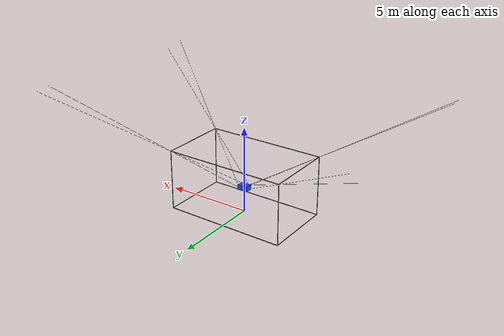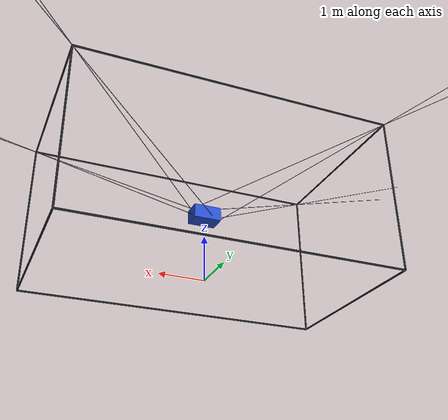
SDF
<?xml version="1.0"?>
<sdf version="1.4">
  <model name="/home/themarkofaspur/catkin_ws/src/cdpr3/sdf/cube">
    <!--Definition of the robot frame-->
    <link name="frame">
      <pose>0 0 0 0 0 0</pose>
      <inertial>
        <inertia>
          <ixx>11770.8333333</ixx>
          <ixy>0</ixy>
          <ixz>0</ixz>
          <iyy>25520.8333333</iyy>
          <iyz>0</iyz>
          <izz>27083.3333333</izz>
        </inertia>
        <mass>100000</mass>
      </inertial>
      <visual name="visual1">
        <geometry>
          <cylinder>
            <radius>0.02</radius>
            <length>3.5</length>
          </cylinder>
        </geometry>
        <pose>-3.500000 -2.000000 1.750000 0.000000 0.000000 0.000000</pose>
        <material>
          <script>
            <uri>file://media/materials/scripts/kitchen.material</uri>
            <name>Gazebo/Black</name>
          </script>
        </material>
      </visual>
      <collision name="collision1">
        <geometry>
          <cylinder>
            <radius>0.02</radius>
          </cylinder>
        </geometry>
        <pose>-3.500000 -2.000000 1.750000 0.000000 0.000000 0.000000</pose>
      </collision>
      <visual name="visual2">
        <geometry>
          <cylinder>
            <radius>0.02</radius>
            <length>4.0</length>
          </cylinder>
        </geometry>
        <pose>-3.500000 0.000000 0.000000 1.570796 0.000000 0.000000</pose>
        <material>
          <script>
            <uri>file://media/materials/scripts/kitchen.material</uri>
            <name>Gazebo/Black</name>
          </script>
        </material>
      </visual>
      <collision name="collision2">
        <geometry>
          <cylinder>
            <radius>0.02</radius>
          </cylinder>
        </geometry>
        <pose>-3.500000 0.000000 0.000000 1.570796 0.000000 0.000000</pose>
      </collision>
      <visual name="visual3">
        <geometry>
          <cylinder>
            <radius>0.02</radius>
            <length>7.0</length>
          </cylinder>
        </geometry>
        <pose>0.000000 -2.000000 0.000000 0.000000 1.570796 0.000000</pose>
        <material>
          <script>
            <uri>file://media/materials/scripts/kitchen.material</uri>
            <name>Gazebo/Black</name>
          </script>
        </material>
      </visual>
      <collision name="collision3">
        <geometry>
          <cylinder>
            <radius>0.02</radius>
          </cylinder>
        </geometry>
        <pose>0.000000 -2.000000 0.000000 0.000000 1.570796 0.000000</pose>
      </collision>
      <visual name="visual4">
        <geometry>
          <cylinder>
            <radius>0.02</radius>
            <length>4.0</length>
          </cylinder>
        </geometry>
        <pose>-3.500000 0.000000 3.500000 1.570796 0.000000 0.000000</pose>
        <material>
          <script>
            <uri>file://media/materials/scripts/kitchen.material</uri>
            <name>Gazebo/Black</name>
          </script>
        </material>
      </visual>
      <collision name="collision4">
        <geometry>
          <cylinder>
            <radius>0.02</radius>
          </cylinder>
        </geometry>
        <pose>-3.500000 0.000000 3.500000 1.570796 0.000000 0.000000</pose>
      </collision>
      <visual name="visual5">
        <geometry>
          <cylinder>
            <radius>0.02</radius>
            <length>7.0</length>
          </cylinder>
        </geometry>
        <pose>0.000000 -2.000000 3.500000 0.000000 1.570796 0.000000</pose>
        <material>
          <script>
            <uri>file://media/materials/scripts/kitchen.material</uri>
            <name>Gazebo/Black</name>
          </script>
        </material>
      </visual>
      <collision name="collision5">
        <geometry>
          <cylinder>
            <radius>0.02</radius>
          </cylinder>
        </geometry>
        <pose>0.000000 -2.000000 3.500000 0.000000 1.570796 0.000000</pose>
      </collision>
      <visual name="visual6">
        <geometry>
          <cylinder>
            <radius>0.02</radius>
            <length>3.5</length>
          </cylinder>
        </geometry>
        <pose>-3.500000 2.000000 1.750000 0.000000 0.000000 0.000000</pose>
        <material>
          <script>
            <uri>file://media/materials/scripts/kitchen.material</uri>
            <name>Gazebo/Black</name>
          </script>
        </material>
      </visual>
      <collision name="collision6">
        <geometry>
          <cylinder>
            <radius>0.02</radius>
          </cylinder>
        </geometry>
        <pose>-3.500000 2.000000 1.750000 0.000000 0.000000 0.000000</pose>
      </collision>
      <visual name="visual7">
        <geometry>
          <cylinder>
            <radius>0.02</radius>
            <length>7.0</length>
          </cylinder>
        </geometry>
        <pose>0.000000 2.000000 0.000000 0.000000 1.570796 0.000000</pose>
        <material>
          <script>
            <uri>file://media/materials/scripts/kitchen.material</uri>
            <name>Gazebo/Black</name>
          </script>
        </material>
      </visual>
      <collision name="collision7">
        <geometry>
          <cylinder>
            <radius>0.02</radius>
          </cylinder>
        </geometry>
        <pose>0.000000 2.000000 0.000000 0.000000 1.570796 0.000000</pose>
      </collision>
      <visual name="visual8">
        <geometry>
          <cylinder>
            <radius>0.02</radius>
            <length>7.0</length>
          </cylinder>
        </geometry>
        <pose>0.000000 2.000000 3.500000 0.000000 1.570796 0.000000</pose>
        <material>
          <script>
            <uri>file://media/materials/scripts/kitchen.material</uri>
            <name>Gazebo/Black</name>
          </script>
        </material>
      </visual>
      <collision name="collision8">
        <geometry>
          <cylinder>
            <radius>0.02</radius>
          </cylinder>
        </geometry>
        <pose>0.000000 2.000000 3.500000 0.000000 1.570796 0.000000</pose>
      </collision>
      <visual name="visual9">
        <geometry>
          <cylinder>
            <radius>0.02</radius>
            <length>3.5</length>
          </cylinder>
        </geometry>
        <pose>3.500000 -2.000000 1.750000 0.000000 0.000000 0.000000</pose>
        <material>
          <script>
            <uri>file://media/materials/scripts/kitchen.material</uri>
            <name>Gazebo/Black</name>
          </script>
        </material>
      </visual>
      <collision name="collision9">
        <geometry>
          <cylinder>
            <radius>0.02</radius>
          </cylinder>
        </geometry>
        <pose>3.500000 -2.000000 1.750000 0.000000 0.000000 0.000000</pose>
      </collision>
      <visual name="visual10">
        <geometry>
          <cylinder>
            <radius>0.02</radius>
            <length>4.0</length>
          </cylinder>
        </geometry>
        <pose>3.500000 0.000000 0.000000 1.570796 0.000000 0.000000</pose>
        <material>
          <script>
            <uri>file://media/materials/scripts/kitchen.material</uri>
            <name>Gazebo/Black</name>
          </script>
        </material>
      </visual>
      <collision name="collision10">
        <geometry>
          <cylinder>
            <radius>0.02</radius>
          </cylinder>
        </geometry>
        <pose>3.500000 0.000000 0.000000 1.570796 0.000000 0.000000</pose>
      </collision>
      <visual name="visual11">
        <geometry>
          <cylinder>
            <radius>0.02</radius>
            <length>4.0</length>
          </cylinder>
        </geometry>
        <pose>3.500000 0.000000 3.500000 1.570796 0.000000 0.000000</pose>
        <material>
          <script>
            <uri>file://media/materials/scripts/kitchen.material</uri>
            <name>Gazebo/Black</name>
          </script>
        </material>
      </visual>
      <collision name="collision11">
        <geometry>
          <cylinder>
            <radius>0.02</radius>
          </cylinder>
        </geometry>
        <pose>3.500000 0.000000 3.500000 1.570796 0.000000 0.000000</pose>
      </collision>
      <visual name="visual12">
        <geometry>
          <cylinder>
            <radius>0.02</radius>
            <length>3.5</length>
          </cylinder>
        </geometry>
        <pose>3.500000 2.000000 1.750000 0.000000 0.000000 0.000000</pose>
        <material>
          <script>
            <uri>file://media/materials/scripts/kitchen.material</uri>
            <name>Gazebo/Black</name>
          </script>
        </material>
      </visual>
      <collision name="collision12">
        <geometry>
          <cylinder>
            <radius>0.02</radius>
          </cylinder>
        </geometry>
        <pose>3.500000 2.000000 1.750000 0.000000 0.000000 0.000000</pose>
      </collision>
    </link>
    <!--Definition of the robot cables-->
    <!--Definition of the robot platform-->
    <link name="platform">
      <pose>0.000000 0.000000 1.500000 0.000000 0.000000 0.000000</pose>
      <visual name="visualplatform">
        <geometry>
          <box>
            <size>0.6 0.4 0.3</size>
          </box>
        </geometry>
        <material>
          <script>
            <uri>file://media/materials/scripts/kitchen.material</uri>
            <name>Gazebo/Blue</name>
          </script>
        </material>
      </visual>
      <collision name="collisionplatform">
        <geometry>
          <box>
            <size>0.6 0.4 0.3</size>
          </box>
        </geometry>
      </collision>
      <inertial>
        <inertia>
          <ixx>0.635416666667</ixx>
          <ixy>0</ixy>
          <ixz>0</ixz>
          <iyy>0.927083333333</iyy>
          <iyz>0</iyz>
          <izz>1.04166666667</izz>
        </inertia>
        <mass>50.0</mass>
      </inertial>
    </link>
    <link name="cable0">
      <pose>-4.738562 2.619281 4.127650 2.362906 0.952128 1.797342</pose>
      <visual name="visual">
        <geometry>
          <cylinder>
            <radius>0.005</radius>
            <length>12.124355653</length>
          </cylinder>
        </geometry>
        <material>
          <script>
            <uri>file://media/materials/scripts/kitchen.material</uri>
            <name>Gazebo/Black</name>
          </script>
        </material>
      </visual>
      <inertial>
        <inertia>
          <ixx>0.005</ixx>
          <ixy>0</ixy>
          <ixz>0</ixz>
          <iyy>0.005</iyy>
          <iyz>0</iyz>
          <izz>0.005</izz>
        </inertia>
        <mass>0.001</mass>
      </inertial>
    </link>
    <link name="virt_X0">
      <inertial>
        <inertia>
          <ixx>0</ixx>
          <ixy>0</ixy>
          <ixz>0</ixz>
          <iyy>0</iyy>
          <iyz>0</iyz>
          <izz>0</izz>
        </inertia>
        <mass>0.001</mass>
      </inertial>
      <pose>-3.500000 2.000000 3.500000 2.362906 0.952128 1.797342</pose>
    </link>
    <joint name="rev_X0" type="revolute">
      <pose>0 0 0 2.362906 0.952128 1.797342</pose>
      <parent>frame</parent>
      <child>virt_X0</child>
      <axis>
        <xyz>-0.130264 0.565132 -0.814651</xyz>
        <limit>
          <effort>6500</effort>
          <velocity>100</velocity>
        </limit>
        <dynamics>
          <damping>0.01</damping>
        </dynamics>
      </axis>
    </joint>
    <link name="virt_Y0">
      <inertial>
        <inertia>
          <ixx>0</ixx>
          <ixy>0</ixy>
          <ixz>0</ixz>
          <iyy>0</iyy>
          <iyz>0</iyz>
          <izz>0</izz>
        </inertia>
        <mass>0.001</mass>
      </inertial>
      <pose>-3.500000 2.000000 3.500000 2.362906 0.952128 1.797342</pose>
    </link>
    <joint name="rev_Y0" type="revolute">
      <pose>0 0 0 2.362906 0.952128 1.797342</pose>
      <parent>virt_Y0</parent>
      <child>virt_X0</child>
      <axis>
        <xyz>0.565132 0.717434 0.407326</xyz>
        <limit>
          <effort>6500</effort>
          <velocity>100</velocity>
        </limit>
        <dynamics>
          <damping>0.01</damping>
        </dynamics>
      </axis>
    </joint>
    <joint name="linear0" type="prismatic">
      <pose>0 0 2.029293 2.362906 0.952128 1.797342</pose>
      <parent>virt_Y0</parent>
      <child>cable0</child>
      <axis>
        <xyz>-0.814651 0.407326 0.412830</xyz>
        <limit>
          <lower>-50</lower>
          <upper>50</upper>
          <effort>6500</effort>
          <velocity>100</velocity>
        </limit>
        <dynamics>
          <damping>1</damping>
        </dynamics>
      </axis>
    </joint>
    <link name="virt_Xpf0">
      <inertial>
        <inertia>
          <ixx>0</ixx>
          <ixy>0</ixy>
          <ixz>0</ixz>
          <iyy>0</iyy>
          <iyz>0</iyz>
          <izz>0</izz>
        </inertia>
        <mass>0.001</mass>
      </inertial>
      <pose>0.200000 0.150000 1.625000 2.362906 0.952128 1.797342</pose>
    </link>
    <joint name="rev_Xpf0" type="revolute">
      <pose>0 0 0 2.362906 0.952128 1.797342</pose>
      <parent>platform</parent>
      <child>virt_Xpf0</child>
      <axis>
        <xyz>1 0 0</xyz>
        <limit>
          <effort>6500</effort>
          <velocity>100</velocity>
        </limit>
        <dynamics>
          <damping>0.01</damping>
        </dynamics>
      </axis>
    </joint>
    <link name="virt_Ypf0">
      <inertial>
        <inertia>
          <ixx>0</ixx>
          <ixy>0</ixy>
          <ixz>0</ixz>
          <iyy>0</iyy>
          <iyz>0</iyz>
          <izz>0</izz>
        </inertia>
        <mass>0.001</mass>
      </inertial>
      <pose>0.200000 0.150000 1.625000 2.362906 0.952128 1.797342</pose>
    </link>
    <joint name="rev_Ypf0" type="revolute">
      <pose>0 0 0 2.362906 0.952128 1.797342</pose>
      <parent>virt_Xpf0</parent>
      <child>virt_Ypf0</child>
      <axis>
        <xyz>0 1 0</xyz>
        <limit>
          <effort>6500</effort>
          <velocity>100</velocity>
        </limit>
        <dynamics>
          <damping>0.01</damping>
        </dynamics>
      </axis>
    </joint>
    <joint name="rev_Zpf0" type="revolute">
      <pose>0 0 0 2.362906 0.952128 1.797342</pose>
      <child>virt_Ypf0</child>
      <parent>cable0</parent>
      <axis>
        <xyz>0 0 1</xyz>
        <limit>
          <effort>6500</effort>
          <velocity>100</velocity>
        </limit>
        <dynamics>
          <damping>0.01</damping>
        </dynamics>
      </axis>
    </joint>
    <link name="cable1">
      <pose>4.622994 2.561497 4.145093 2.425290 -0.919977 -1.847587</pose>
      <visual name="visual">
        <geometry>
          <cylinder>
            <radius>0.005</radius>
            <length>12.124355653</length>
          </cylinder>
        </geometry>
        <material>
          <script>
            <uri>file://media/materials/scripts/kitchen.material</uri>
            <name>Gazebo/Black</name>
          </script>
        </material>
      </visual>
      <inertial>
        <inertia>
          <ixx>0.005</ixx>
          <ixy>0</ixy>
          <ixz>0</ixz>
          <iyy>0.005</iyy>
          <iyz>0</iyz>
          <izz>0.005</izz>
        </inertia>
        <mass>0.001</mass>
      </inertial>
    </link>
    <link name="virt_X1">
      <inertial>
        <inertia>
          <ixx>0</ixx>
          <ixy>0</ixy>
          <ixz>0</ixz>
          <iyy>0</iyy>
          <iyz>0</iyz>
          <izz>0</izz>
        </inertia>
        <mass>0.001</mass>
      </inertial>
      <pose>3.500000 2.000000 3.500100 2.425290 -0.919977 -1.847587</pose>
    </link>
    <joint name="rev_X1" type="revolute">
      <pose>0 0 0 2.425290 -0.919977 -1.847587</pose>
      <parent>frame</parent>
      <child>virt_X1</child>
      <axis>
        <xyz>-0.165557 -0.582779 0.795588</xyz>
        <limit>
          <effort>6500</effort>
          <velocity>100</velocity>
        </limit>
        <dynamics>
          <damping>0.01</damping>
        </dynamics>
      </axis>
    </joint>
    <link name="virt_Y1">
      <inertial>
        <inertia>
          <ixx>0</ixx>
          <ixy>0</ixy>
          <ixz>0</ixz>
          <iyy>0</iyy>
          <iyz>0</iyz>
          <izz>0</izz>
        </inertia>
        <mass>0.001</mass>
      </inertial>
      <pose>3.500000 2.000000 3.500100 2.425290 -0.919977 -1.847587</pose>
    </link>
    <joint name="rev_Y1" type="revolute">
      <pose>0 0 0 2.425290 -0.919977 -1.847587</pose>
      <parent>virt_Y1</parent>
      <child>virt_X1</child>
      <axis>
        <xyz>-0.582779 0.708611 0.397794</xyz>
        <limit>
          <effort>6500</effort>
          <velocity>100</velocity>
        </limit>
        <dynamics>
          <damping>0.01</damping>
        </dynamics>
      </axis>
    </joint>
    <joint name="linear1" type="prismatic">
      <pose>0 0 1.839943 2.425290 -0.919977 -1.847587</pose>
      <parent>virt_Y1</parent>
      <child>cable1</child>
      <axis>
        <xyz>0.795588 0.397794 0.456947</xyz>
        <limit>
          <lower>-50</lower>
          <upper>50</upper>
          <effort>6500</effort>
          <velocity>100</velocity>
        </limit>
        <dynamics>
          <damping>1</damping>
        </dynamics>
      </axis>
    </joint>
    <link name="virt_Xpf1">
      <inertial>
        <inertia>
          <ixx>0</ixx>
          <ixy>0</ixy>
          <ixz>0</ixz>
          <iyy>0</iyy>
          <iyz>0</iyz>
          <izz>0</izz>
        </inertia>
        <mass>0.001</mass>
      </inertial>
      <pose>-0.200000 0.150000 1.375000 2.425290 -0.919977 -1.847587</pose>
    </link>
    <joint name="rev_Xpf1" type="revolute">
      <pose>0 0 0 2.425290 -0.919977 -1.847587</pose>
      <parent>platform</parent>
      <child>virt_Xpf1</child>
      <axis>
        <xyz>1 0 0</xyz>
        <limit>
          <effort>6500</effort>
          <velocity>100</velocity>
        </limit>
        <dynamics>
          <damping>0.01</damping>
        </dynamics>
      </axis>
    </joint>
    <link name="virt_Ypf1">
      <inertial>
        <inertia>
          <ixx>0</ixx>
          <ixy>0</ixy>
          <ixz>0</ixz>
          <iyy>0</iyy>
          <iyz>0</iyz>
          <izz>0</izz>
        </inertia>
        <mass>0.001</mass>
      </inertial>
      <pose>-0.200000 0.150000 1.375000 2.425290 -0.919977 -1.847587</pose>
    </link>
    <joint name="rev_Ypf1" type="revolute">
      <pose>0 0 0 2.425290 -0.919977 -1.847587</pose>
      <parent>virt_Xpf1</parent>
      <child>virt_Ypf1</child>
      <axis>
        <xyz>0 1 0</xyz>
        <limit>
          <effort>6500</effort>
          <velocity>100</velocity>
        </limit>
        <dynamics>
          <damping>0.01</damping>
        </dynamics>
      </axis>
    </joint>
    <joint name="rev_Zpf1" type="revolute">
      <pose>0 0 0 2.425290 -0.919977 -1.847587</pose>
      <child>virt_Ypf1</child>
      <parent>cable1</parent>
      <axis>
        <xyz>0 0 1</xyz>
        <limit>
          <effort>6500</effort>
          <velocity>100</velocity>
        </limit>
        <dynamics>
          <damping>0.01</damping>
        </dynamics>
      </axis>
    </joint>
    <link name="cable2">
      <pose>-4.670154 2.762373 4.253508 2.350347 0.829189 1.623158</pose>
      <visual name="visual">
        <geometry>
          <cylinder>
            <radius>0.005</radius>
            <length>12.124355653</length>
          </cylinder>
        </geometry>
        <material>
          <script>
            <uri>file://media/materials/scripts/kitchen.material</uri>
            <name>Gazebo/Black</name>
          </script>
        </material>
      </visual>
      <inertial>
        <inertia>
          <ixx>0.005</ixx>
          <ixy>0</ixy>
          <ixz>0</ixz>
          <iyy>0.005</iyy>
          <iyz>0</iyz>
          <izz>0.005</izz>
        </inertia>
        <mass>0.001</mass>
      </inertial>
    </link>
    <link name="virt_X2">
      <inertial>
        <inertia>
          <ixx>0</ixx>
          <ixy>0</ixy>
          <ixz>0</ixz>
          <iyy>0</iyy>
          <iyz>0</iyz>
          <izz>0</izz>
        </inertia>
        <mass>0.001</mass>
      </inertial>
      <pose>-3.500000 2.000000 3.500000 2.350347 0.829189 1.623158</pose>
    </link>
    <joint name="rev_X2" type="revolute">
      <pose>0 0 0 2.350347 0.829189 1.623158</pose>
      <parent>frame</parent>
      <child>virt_X2</child>
      <axis>
        <xyz>-0.035353 0.674548 -0.737384</xyz>
        <limit>
          <effort>6500</effort>
          <velocity>100</velocity>
        </limit>
        <dynamics>
          <damping>0.01</damping>
        </dynamics>
      </axis>
    </joint>
    <link name="virt_Y2">
      <inertial>
        <inertia>
          <ixx>0</ixx>
          <ixy>0</ixy>
          <ixz>0</ixz>
          <iyy>0</iyy>
          <iyz>0</iyz>
          <izz>0</izz>
        </inertia>
        <mass>0.001</mass>
      </inertial>
      <pose>-3.500000 2.000000 3.500000 2.350347 0.829189 1.623158</pose>
    </link>
    <joint name="rev_Y2" type="revolute">
      <pose>0 0 0 2.350347 0.829189 1.623158</pose>
      <parent>virt_Y2</parent>
      <child>virt_X2</child>
      <axis>
        <xyz>0.674548 0.560522 0.480417</xyz>
        <limit>
          <effort>6500</effort>
          <velocity>100</velocity>
        </limit>
        <dynamics>
          <damping>0.01</damping>
        </dynamics>
      </axis>
    </joint>
    <joint name="linear2" type="prismatic">
      <pose>0 0 2.149600 2.350347 0.829189 1.623158</pose>
      <parent>virt_Y2</parent>
      <child>cable2</child>
      <axis>
        <xyz>-0.737384 0.480417 0.474831</xyz>
        <limit>
          <lower>-50</lower>
          <upper>50</upper>
          <effort>6500</effort>
          <velocity>100</velocity>
        </limit>
        <dynamics>
          <damping>1</damping>
        </dynamics>
      </axis>
    </joint>
    <link name="virt_Xpf2">
      <inertial>
        <inertia>
          <ixx>0</ixx>
          <ixy>0</ixy>
          <ixz>0</ixz>
          <iyy>0</iyy>
          <iyz>0</iyz>
          <izz>0</izz>
        </inertia>
        <mass>0.001</mass>
      </inertial>
      <pose>-0.200000 -0.150000 1.375000 2.350347 0.829189 1.623158</pose>
    </link>
    <joint name="rev_Xpf2" type="revolute">
      <pose>0 0 0 2.350347 0.829189 1.623158</pose>
      <parent>platform</parent>
      <child>virt_Xpf2</child>
      <axis>
        <xyz>1 0 0</xyz>
        <limit>
          <effort>6500</effort>
          <velocity>100</velocity>
        </limit>
        <dynamics>
          <damping>0.01</damping>
        </dynamics>
      </axis>
    </joint>
    <link name="virt_Ypf2">
      <inertial>
        <inertia>
          <ixx>0</ixx>
          <ixy>0</ixy>
          <ixz>0</ixz>
          <iyy>0</iyy>
          <iyz>0</iyz>
          <izz>0</izz>
        </inertia>
        <mass>0.001</mass>
      </inertial>
      <pose>-0.200000 -0.150000 1.375000 2.350347 0.829189 1.623158</pose>
    </link>
    <joint name="rev_Ypf2" type="revolute">
      <pose>0 0 0 2.350347 0.829189 1.623158</pose>
      <parent>virt_Xpf2</parent>
      <child>virt_Ypf2</child>
      <axis>
        <xyz>0 1 0</xyz>
        <limit>
          <effort>6500</effort>
          <velocity>100</velocity>
        </limit>
        <dynamics>
          <damping>0.01</damping>
        </dynamics>
      </axis>
    </joint>
    <joint name="rev_Zpf2" type="revolute">
      <pose>0 0 0 2.350347 0.829189 1.623158</pose>
      <child>virt_Ypf2</child>
      <parent>cable2</parent>
      <axis>
        <xyz>0 0 1</xyz>
        <limit>
          <effort>6500</effort>
          <velocity>100</velocity>
        </limit>
        <dynamics>
          <damping>0.01</damping>
        </dynamics>
      </axis>
    </joint>
    <link name="cable3">
      <pose>4.786066 2.837892 4.230858 2.288004 -0.857952 -1.576575</pose>
      <visual name="visual">
        <geometry>
          <cylinder>
            <radius>0.005</radius>
            <length>12.124355653</length>
          </cylinder>
        </geometry>
        <material>
          <script>
            <uri>file://media/materials/scripts/kitchen.material</uri>
            <name>Gazebo/Black</name>
          </script>
        </material>
      </visual>
      <inertial>
        <inertia>
          <ixx>0.005</ixx>
          <ixy>0</ixy>
          <ixz>0</ixz>
          <iyy>0.005</iyy>
          <iyz>0</iyz>
          <izz>0.005</izz>
        </inertia>
        <mass>0.001</mass>
      </inertial>
    </link>
    <link name="virt_X3">
      <inertial>
        <inertia>
          <ixx>0</ixx>
          <ixy>0</ixy>
          <ixz>0</ixz>
          <iyy>0</iyy>
          <iyz>0</iyz>
          <izz>0</izz>
        </inertia>
        <mass>0.001</mass>
      </inertial>
      <pose>3.500000 2.000000 3.500100 2.288004 -0.857952 -1.576575</pose>
    </link>
    <joint name="rev_X3" type="revolute">
      <pose>0 0 0 2.288004 -0.857952 -1.576575</pose>
      <parent>frame</parent>
      <child>virt_X3</child>
      <axis>
        <xyz>-0.003779 -0.653977 0.756505</xyz>
        <limit>
          <effort>6500</effort>
          <velocity>100</velocity>
        </limit>
        <dynamics>
          <damping>0.01</damping>
        </dynamics>
      </axis>
    </joint>
    <link name="virt_Y3">
      <inertial>
        <inertia>
          <ixx>0</ixx>
          <ixy>0</ixy>
          <ixz>0</ixz>
          <iyy>0</iyy>
          <iyz>0</iyz>
          <izz>0</izz>
        </inertia>
        <mass>0.001</mass>
      </inertial>
      <pose>3.500000 2.000000 3.500100 2.288004 -0.857952 -1.576575</pose>
    </link>
    <joint name="rev_Y3" type="revolute">
      <pose>0 0 0 2.288004 -0.857952 -1.576575</pose>
      <parent>virt_Y3</parent>
      <child>virt_X3</child>
      <axis>
        <xyz>-0.653977 0.573924 0.492874</xyz>
        <limit>
          <effort>6500</effort>
          <velocity>100</velocity>
        </limit>
        <dynamics>
          <damping>0.01</damping>
        </dynamics>
      </axis>
    </joint>
    <joint name="linear3" type="prismatic">
      <pose>0 0 2.362534 2.288004 -0.857952 -1.576575</pose>
      <parent>virt_Y3</parent>
      <child>cable3</child>
      <axis>
        <xyz>0.756505 0.492874 0.429855</xyz>
        <limit>
          <lower>-50</lower>
          <upper>50</upper>
          <effort>6500</effort>
          <velocity>100</velocity>
        </limit>
        <dynamics>
          <damping>1</damping>
        </dynamics>
      </axis>
    </joint>
    <link name="virt_Xpf3">
      <inertial>
        <inertia>
          <ixx>0</ixx>
          <ixy>0</ixy>
          <ixz>0</ixz>
          <iyy>0</iyy>
          <iyz>0</iyz>
          <izz>0</izz>
        </inertia>
        <mass>0.001</mass>
      </inertial>
      <pose>0.200000 -0.150000 1.625000 2.288004 -0.857952 -1.576575</pose>
    </link>
    <joint name="rev_Xpf3" type="revolute">
      <pose>0 0 0 2.288004 -0.857952 -1.576575</pose>
      <parent>platform</parent>
      <child>virt_Xpf3</child>
      <axis>
        <xyz>1 0 0</xyz>
        <limit>
          <effort>6500</effort>
          <velocity>100</velocity>
        </limit>
        <dynamics>
          <damping>0.01</damping>
        </dynamics>
      </axis>
    </joint>
    <link name="virt_Ypf3">
      <inertial>
        <inertia>
          <ixx>0</ixx>
          <ixy>0</ixy>
          <ixz>0</ixz>
          <iyy>0</iyy>
          <iyz>0</iyz>
          <izz>0</izz>
        </inertia>
        <mass>0.001</mass>
      </inertial>
      <pose>0.200000 -0.150000 1.625000 2.288004 -0.857952 -1.576575</pose>
    </link>
    <joint name="rev_Ypf3" type="revolute">
      <pose>0 0 0 2.288004 -0.857952 -1.576575</pose>
      <parent>virt_Xpf3</parent>
      <child>virt_Ypf3</child>
      <axis>
        <xyz>0 1 0</xyz>
        <limit>
          <effort>6500</effort>
          <velocity>100</velocity>
        </limit>
        <dynamics>
          <damping>0.01</damping>
        </dynamics>
      </axis>
    </joint>
    <joint name="rev_Zpf3" type="revolute">
      <pose>0 0 0 2.288004 -0.857952 -1.576575</pose>
      <child>virt_Ypf3</child>
      <parent>cable3</parent>
      <axis>
        <xyz>0 0 1</xyz>
        <limit>
          <effort>6500</effort>
          <velocity>100</velocity>
        </limit>
        <dynamics>
          <damping>0.01</damping>
        </dynamics>
      </axis>
    </joint>
    <link name="cable4">
      <pose>-4.786112 -2.837921 4.230745 -2.287978 0.857963 -1.576555</pose>
      <visual name="visual">
        <geometry>
          <cylinder>
            <radius>0.005</radius>
            <length>12.124355653</length>
          </cylinder>
        </geometry>
        <material>
          <script>
            <uri>file://media/materials/scripts/kitchen.material</uri>
            <name>Gazebo/Black</name>
          </script>
        </material>
      </visual>
      <inertial>
        <inertia>
          <ixx>0.005</ixx>
          <ixy>0</ixy>
          <ixz>0</ixz>
          <iyy>0.005</iyy>
          <iyz>0</iyz>
          <izz>0.005</izz>
        </inertia>
        <mass>0.001</mass>
      </inertial>
    </link>
    <link name="virt_X4">
      <inertial>
        <inertia>
          <ixx>0</ixx>
          <ixy>0</ixy>
          <ixz>0</ixz>
          <iyy>0</iyy>
          <iyz>0</iyz>
          <izz>0</izz>
        </inertia>
        <mass>0.001</mass>
      </inertial>
      <pose>-3.500000 -2.000000 3.500000 -2.287978 0.857963 -1.576555</pose>
    </link>
    <joint name="rev_X4" type="revolute">
      <pose>0 0 0 -2.287978 0.857963 -1.576555</pose>
      <parent>frame</parent>
      <child>virt_X4</child>
      <axis>
        <xyz>-0.003766 -0.653969 -0.756512</xyz>
        <limit>
          <effort>6500</effort>
          <velocity>100</velocity>
        </limit>
        <dynamics>
          <damping>0.01</damping>
        </dynamics>
      </axis>
    </joint>
    <link name="virt_Y4">
      <inertial>
        <inertia>
          <ixx>0</ixx>
          <ixy>0</ixy>
          <ixz>0</ixz>
          <iyy>0</iyy>
          <iyz>0</iyz>
          <izz>0</izz>
        </inertia>
        <mass>0.001</mass>
      </inertial>
      <pose>-3.500000 -2.000000 3.500000 -2.287978 0.857963 -1.576555</pose>
    </link>
    <joint name="rev_Y4" type="revolute">
      <pose>0 0 0 -2.287978 0.857963 -1.576555</pose>
      <parent>virt_Y4</parent>
      <child>virt_X4</child>
      <axis>
        <xyz>-0.653969 0.573929 -0.492879</xyz>
        <limit>
          <effort>6500</effort>
          <velocity>100</velocity>
        </limit>
        <dynamics>
          <damping>0.01</damping>
        </dynamics>
      </axis>
    </joint>
    <joint name="linear4" type="prismatic">
      <pose>0 0 2.362617 -2.287978 0.857963 -1.576555</pose>
      <parent>virt_Y4</parent>
      <child>cable4</child>
      <axis>
        <xyz>-0.756512 -0.492879 0.429836</xyz>
        <limit>
          <lower>-50</lower>
          <upper>50</upper>
          <effort>6500</effort>
          <velocity>100</velocity>
        </limit>
        <dynamics>
          <damping>1</damping>
        </dynamics>
      </axis>
    </joint>
    <link name="virt_Xpf4">
      <inertial>
        <inertia>
          <ixx>0</ixx>
          <ixy>0</ixy>
          <ixz>0</ixz>
          <iyy>0</iyy>
          <iyz>0</iyz>
          <izz>0</izz>
        </inertia>
        <mass>0.001</mass>
      </inertial>
      <pose>-0.200000 0.150000 1.625000 -2.287978 0.857963 -1.576555</pose>
    </link>
    <joint name="rev_Xpf4" type="revolute">
      <pose>0 0 0 -2.287978 0.857963 -1.576555</pose>
      <parent>platform</parent>
      <child>virt_Xpf4</child>
      <axis>
        <xyz>1 0 0</xyz>
        <limit>
          <effort>6500</effort>
          <velocity>100</velocity>
        </limit>
        <dynamics>
          <damping>0.01</damping>
        </dynamics>
      </axis>
    </joint>
    <link name="virt_Ypf4">
      <inertial>
        <inertia>
          <ixx>0</ixx>
          <ixy>0</ixy>
          <ixz>0</ixz>
          <iyy>0</iyy>
          <iyz>0</iyz>
          <izz>0</izz>
        </inertia>
        <mass>0.001</mass>
      </inertial>
      <pose>-0.200000 0.150000 1.625000 -2.287978 0.857963 -1.576555</pose>
    </link>
    <joint name="rev_Ypf4" type="revolute">
      <pose>0 0 0 -2.287978 0.857963 -1.576555</pose>
      <parent>virt_Xpf4</parent>
      <child>virt_Ypf4</child>
      <axis>
        <xyz>0 1 0</xyz>
        <limit>
          <effort>6500</effort>
          <velocity>100</velocity>
        </limit>
        <dynamics>
          <damping>0.01</damping>
        </dynamics>
      </axis>
    </joint>
    <joint name="rev_Zpf4" type="revolute">
      <pose>0 0 0 -2.287978 0.857963 -1.576555</pose>
      <child>virt_Ypf4</child>
      <parent>cable4</parent>
      <axis>
        <xyz>0 0 1</xyz>
        <limit>
          <effort>6500</effort>
          <velocity>100</velocity>
        </limit>
        <dynamics>
          <damping>0.01</damping>
        </dynamics>
      </axis>
    </joint>
    <link name="cable5">
      <pose>4.670106 -2.762342 4.253613 -2.350370 -0.829178 1.623175</pose>
      <visual name="visual">
        <geometry>
          <cylinder>
            <radius>0.005</radius>
            <length>12.124355653</length>
          </cylinder>
        </geometry>
        <material>
          <script>
            <uri>file://media/materials/scripts/kitchen.material</uri>
            <name>Gazebo/Black</name>
          </script>
        </material>
      </visual>
      <inertial>
        <inertia>
          <ixx>0.005</ixx>
          <ixy>0</ixy>
          <ixz>0</ixz>
          <iyy>0.005</iyy>
          <iyz>0</iyz>
          <izz>0.005</izz>
        </inertia>
        <mass>0.001</mass>
      </inertial>
    </link>
    <link name="virt_X5">
      <inertial>
        <inertia>
          <ixx>0</ixx>
          <ixy>0</ixy>
          <ixz>0</ixz>
          <iyy>0</iyy>
          <iyz>0</iyz>
          <izz>0</izz>
        </inertia>
        <mass>0.001</mass>
      </inertial>
      <pose>3.500000 -2.000000 3.500100 -2.350370 -0.829178 1.623175</pose>
    </link>
    <joint name="rev_X5" type="revolute">
      <pose>0 0 0 -2.350370 -0.829178 1.623175</pose>
      <parent>frame</parent>
      <child>virt_X5</child>
      <axis>
        <xyz>-0.035365 0.674556 0.737376</xyz>
        <limit>
          <effort>6500</effort>
          <velocity>100</velocity>
        </limit>
        <dynamics>
          <damping>0.01</damping>
        </dynamics>
      </axis>
    </joint>
    <link name="virt_Y5">
      <inertial>
        <inertia>
          <ixx>0</ixx>
          <ixy>0</ixy>
          <ixz>0</ixz>
          <iyy>0</iyy>
          <iyz>0</iyz>
          <izz>0</izz>
        </inertia>
        <mass>0.001</mass>
      </inertial>
      <pose>3.500000 -2.000000 3.500100 -2.350370 -0.829178 1.623175</pose>
    </link>
    <joint name="rev_Y5" type="revolute">
      <pose>0 0 0 -2.350370 -0.829178 1.623175</pose>
      <parent>virt_Y5</parent>
      <child>virt_X5</child>
      <axis>
        <xyz>0.674556 0.560517 -0.480412</xyz>
        <limit>
          <effort>6500</effort>
          <velocity>100</velocity>
        </limit>
        <dynamics>
          <damping>0.01</damping>
        </dynamics>
      </axis>
    </joint>
    <joint name="linear5" type="prismatic">
      <pose>0 0 2.149513 -2.350370 -0.829178 1.623175</pose>
      <parent>virt_Y5</parent>
      <child>cable5</child>
      <axis>
        <xyz>0.737376 -0.480412 0.474848</xyz>
        <limit>
          <lower>-50</lower>
          <upper>50</upper>
          <effort>6500</effort>
          <velocity>100</velocity>
        </limit>
        <dynamics>
          <damping>1</damping>
        </dynamics>
      </axis>
    </joint>
    <link name="virt_Xpf5">
      <inertial>
        <inertia>
          <ixx>0</ixx>
          <ixy>0</ixy>
          <ixz>0</ixz>
          <iyy>0</iyy>
          <iyz>0</iyz>
          <izz>0</izz>
        </inertia>
        <mass>0.001</mass>
      </inertial>
      <pose>0.200000 0.150000 1.375000 -2.350370 -0.829178 1.623175</pose>
    </link>
    <joint name="rev_Xpf5" type="revolute">
      <pose>0 0 0 -2.350370 -0.829178 1.623175</pose>
      <parent>platform</parent>
      <child>virt_Xpf5</child>
      <axis>
        <xyz>1 0 0</xyz>
        <limit>
          <effort>6500</effort>
          <velocity>100</velocity>
        </limit>
        <dynamics>
          <damping>0.01</damping>
        </dynamics>
      </axis>
    </joint>
    <link name="virt_Ypf5">
      <inertial>
        <inertia>
          <ixx>0</ixx>
          <ixy>0</ixy>
          <ixz>0</ixz>
          <iyy>0</iyy>
          <iyz>0</iyz>
          <izz>0</izz>
        </inertia>
        <mass>0.001</mass>
      </inertial>
      <pose>0.200000 0.150000 1.375000 -2.350370 -0.829178 1.623175</pose>
    </link>
    <joint name="rev_Ypf5" type="revolute">
      <pose>0 0 0 -2.350370 -0.829178 1.623175</pose>
      <parent>virt_Xpf5</parent>
      <child>virt_Ypf5</child>
      <axis>
        <xyz>0 1 0</xyz>
        <limit>
          <effort>6500</effort>
          <velocity>100</velocity>
        </limit>
        <dynamics>
          <damping>0.01</damping>
        </dynamics>
      </axis>
    </joint>
    <joint name="rev_Zpf5" type="revolute">
      <pose>0 0 0 -2.350370 -0.829178 1.623175</pose>
      <child>virt_Ypf5</child>
      <parent>cable5</parent>
      <axis>
        <xyz>0 0 1</xyz>
        <limit>
          <effort>6500</effort>
          <velocity>100</velocity>
        </limit>
        <dynamics>
          <damping>0.01</damping>
        </dynamics>
      </axis>
    </joint>
    <link name="cable6">
      <pose>-4.623041 -2.561521 4.144990 -2.425267 0.919990 -1.847569</pose>
      <visual name="visual">
        <geometry>
          <cylinder>
            <radius>0.005</radius>
            <length>12.124355653</length>
          </cylinder>
        </geometry>
        <material>
          <script>
            <uri>file://media/materials/scripts/kitchen.material</uri>
            <name>Gazebo/Black</name>
          </script>
        </material>
      </visual>
      <inertial>
        <inertia>
          <ixx>0.005</ixx>
          <ixy>0</ixy>
          <ixz>0</ixz>
          <iyy>0.005</iyy>
          <iyz>0</iyz>
          <izz>0.005</izz>
        </inertia>
        <mass>0.001</mass>
      </inertial>
    </link>
    <link name="virt_X6">
      <inertial>
        <inertia>
          <ixx>0</ixx>
          <ixy>0</ixy>
          <ixz>0</ixz>
          <iyy>0</iyy>
          <iyz>0</iyz>
          <izz>0</izz>
        </inertia>
        <mass>0.001</mass>
      </inertial>
      <pose>-3.500000 -2.000000 3.500000 -2.425267 0.919990 -1.847569</pose>
    </link>
    <joint name="rev_X6" type="revolute">
      <pose>0 0 0 -2.425267 0.919990 -1.847569</pose>
      <parent>frame</parent>
      <child>virt_X6</child>
      <axis>
        <xyz>-0.165544 -0.582772 -0.795595</xyz>
        <limit>
          <effort>6500</effort>
          <velocity>100</velocity>
        </limit>
        <dynamics>
          <damping>0.01</damping>
        </dynamics>
      </axis>
    </joint>
    <link name="virt_Y6">
      <inertial>
        <inertia>
          <ixx>0</ixx>
          <ixy>0</ixy>
          <ixz>0</ixz>
          <iyy>0</iyy>
          <iyz>0</iyz>
          <izz>0</izz>
        </inertia>
        <mass>0.001</mass>
      </inertial>
      <pose>-3.500000 -2.000000 3.500000 -2.425267 0.919990 -1.847569</pose>
    </link>
    <joint name="rev_Y6" type="revolute">
      <pose>0 0 0 -2.425267 0.919990 -1.847569</pose>
      <parent>virt_Y6</parent>
      <child>virt_X6</child>
      <axis>
        <xyz>-0.582772 0.708614 -0.397798</xyz>
        <limit>
          <effort>6500</effort>
          <velocity>100</velocity>
        </limit>
        <dynamics>
          <damping>0.01</damping>
        </dynamics>
      </axis>
    </joint>
    <joint name="linear6" type="prismatic">
      <pose>0 0 1.840020 -2.425267 0.919990 -1.847569</pose>
      <parent>virt_Y6</parent>
      <child>cable6</child>
      <axis>
        <xyz>-0.795595 -0.397798 0.456930</xyz>
        <limit>
          <lower>-50</lower>
          <upper>50</upper>
          <effort>6500</effort>
          <velocity>100</velocity>
        </limit>
        <dynamics>
          <damping>1</damping>
        </dynamics>
      </axis>
    </joint>
    <link name="virt_Xpf6">
      <inertial>
        <inertia>
          <ixx>0</ixx>
          <ixy>0</ixy>
          <ixz>0</ixz>
          <iyy>0</iyy>
          <iyz>0</iyz>
          <izz>0</izz>
        </inertia>
        <mass>0.001</mass>
      </inertial>
      <pose>0.200000 -0.150000 1.375000 -2.425267 0.919990 -1.847569</pose>
    </link>
    <joint name="rev_Xpf6" type="revolute">
      <pose>0 0 0 -2.425267 0.919990 -1.847569</pose>
      <parent>platform</parent>
      <child>virt_Xpf6</child>
      <axis>
        <xyz>1 0 0</xyz>
        <limit>
          <effort>6500</effort>
          <velocity>100</velocity>
        </limit>
        <dynamics>
          <damping>0.01</damping>
        </dynamics>
      </axis>
    </joint>
    <link name="virt_Ypf6">
      <inertial>
        <inertia>
          <ixx>0</ixx>
          <ixy>0</ixy>
          <ixz>0</ixz>
          <iyy>0</iyy>
          <iyz>0</iyz>
          <izz>0</izz>
        </inertia>
        <mass>0.001</mass>
      </inertial>
      <pose>0.200000 -0.150000 1.375000 -2.425267 0.919990 -1.847569</pose>
    </link>
    <joint name="rev_Ypf6" type="revolute">
      <pose>0 0 0 -2.425267 0.919990 -1.847569</pose>
      <parent>virt_Xpf6</parent>
      <child>virt_Ypf6</child>
      <axis>
        <xyz>0 1 0</xyz>
        <limit>
          <effort>6500</effort>
          <velocity>100</velocity>
        </limit>
        <dynamics>
          <damping>0.01</damping>
        </dynamics>
      </axis>
    </joint>
    <joint name="rev_Zpf6" type="revolute">
      <pose>0 0 0 -2.425267 0.919990 -1.847569</pose>
      <child>virt_Ypf6</child>
      <parent>cable6</parent>
      <axis>
        <xyz>0 0 1</xyz>
        <limit>
          <effort>6500</effort>
          <velocity>100</velocity>
        </limit>
        <dynamics>
          <damping>0.01</damping>
        </dynamics>
      </axis>
    </joint>
    <link name="cable7">
      <pose>4.738517 -2.619259 4.127760 -2.362932 -0.952115 1.797363</pose>
      <visual name="visual">
        <geometry>
          <cylinder>
            <radius>0.005</radius>
            <length>12.124355653</length>
          </cylinder>
        </geometry>
        <material>
          <script>
            <uri>file://media/materials/scripts/kitchen.material</uri>
            <name>Gazebo/Black</name>
          </script>
        </material>
      </visual>
      <inertial>
        <inertia>
          <ixx>0.005</ixx>
          <ixy>0</ixy>
          <ixz>0</ixz>
          <iyy>0.005</iyy>
          <iyz>0</iyz>
          <izz>0.005</izz>
        </inertia>
        <mass>0.001</mass>
      </inertial>
    </link>
    <link name="virt_X7">
      <inertial>
        <inertia>
          <ixx>0</ixx>
          <ixy>0</ixy>
          <ixz>0</ixz>
          <iyy>0</iyy>
          <iyz>0</iyz>
          <izz>0</izz>
        </inertia>
        <mass>0.001</mass>
      </inertial>
      <pose>3.500000 -2.000000 3.500100 -2.362932 -0.952115 1.797363</pose>
    </link>
    <joint name="rev_X7" type="revolute">
      <pose>0 0 0 -2.362932 -0.952115 1.797363</pose>
      <parent>frame</parent>
      <child>virt_X7</child>
      <axis>
        <xyz>-0.130279 0.565139 0.814644</xyz>
        <limit>
          <effort>6500</effort>
          <velocity>100</velocity>
        </limit>
        <dynamics>
          <damping>0.01</damping>
        </dynamics>
      </axis>
    </joint>
    <link name="virt_Y7">
      <inertial>
        <inertia>
          <ixx>0</ixx>
          <ixy>0</ixy>
          <ixz>0</ixz>
          <iyy>0</iyy>
          <iyz>0</iyz>
          <izz>0</izz>
        </inertia>
        <mass>0.001</mass>
      </inertial>
      <pose>3.500000 -2.000000 3.500100 -2.362932 -0.952115 1.797363</pose>
    </link>
    <joint name="rev_Y7" type="revolute">
      <pose>0 0 0 -2.362932 -0.952115 1.797363</pose>
      <parent>virt_Y7</parent>
      <child>virt_X7</child>
      <axis>
        <xyz>0.565139 0.717430 -0.407322</xyz>
        <limit>
          <effort>6500</effort>
          <velocity>100</velocity>
        </limit>
        <dynamics>
          <damping>0.01</damping>
        </dynamics>
      </axis>
    </joint>
    <joint name="linear7" type="prismatic">
      <pose>0 0 2.029219 -2.362932 -0.952115 1.797363</pose>
      <parent>virt_Y7</parent>
      <child>cable7</child>
      <axis>
        <xyz>0.814644 -0.407322 0.412848</xyz>
        <limit>
          <lower>-50</lower>
          <upper>50</upper>
          <effort>6500</effort>
          <velocity>100</velocity>
        </limit>
        <dynamics>
          <damping>1</damping>
        </dynamics>
      </axis>
    </joint>
    <link name="virt_Xpf7">
      <inertial>
        <inertia>
          <ixx>0</ixx>
          <ixy>0</ixy>
          <ixz>0</ixz>
          <iyy>0</iyy>
          <iyz>0</iyz>
          <izz>0</izz>
        </inertia>
        <mass>0.001</mass>
      </inertial>
      <pose>-0.200000 -0.150000 1.625000 -2.362932 -0.952115 1.797363</pose>
    </link>
    <joint name="rev_Xpf7" type="revolute">
      <pose>0 0 0 -2.362932 -0.952115 1.797363</pose>
      <parent>platform</parent>
      <child>virt_Xpf7</child>
      <axis>
        <xyz>1 0 0</xyz>
        <limit>
          <effort>6500</effort>
          <velocity>100</velocity>
        </limit>
        <dynamics>
          <damping>0.01</damping>
        </dynamics>
      </axis>
    </joint>
    <link name="virt_Ypf7">
      <inertial>
        <inertia>
          <ixx>0</ixx>
          <ixy>0</ixy>
          <ixz>0</ixz>
          <iyy>0</iyy>
          <iyz>0</iyz>
          <izz>0</izz>
        </inertia>
        <mass>0.001</mass>
      </inertial>
      <pose>-0.200000 -0.150000 1.625000 -2.362932 -0.952115 1.797363</pose>
    </link>
    <joint name="rev_Ypf7" type="revolute">
      <pose>0 0 0 -2.362932 -0.952115 1.797363</pose>
      <parent>virt_Xpf7</parent>
      <child>virt_Ypf7</child>
      <axis>
        <xyz>0 1 0</xyz>
        <limit>
          <effort>6500</effort>
          <velocity>100</velocity>
        </limit>
        <dynamics>
          <damping>0.01</damping>
        </dynamics>
      </axis>
    </joint>
    <joint name="rev_Zpf7" type="revolute">
      <pose>0 0 0 -2.362932 -0.952115 1.797363</pose>
      <child>virt_Ypf7</child>
      <parent>cable7</parent>
      <axis>
        <xyz>0 0 1</xyz>
        <limit>
          <effort>6500</effort>
          <velocity>100</velocity>
        </limit>
        <dynamics>
          <damping>0.01</damping>
        </dynamics>
      </axis>
    </joint>
    <plugin filename="libcdpr3.so" name="freefloating_gazebo_control"/>
  </model>
</sdf>
